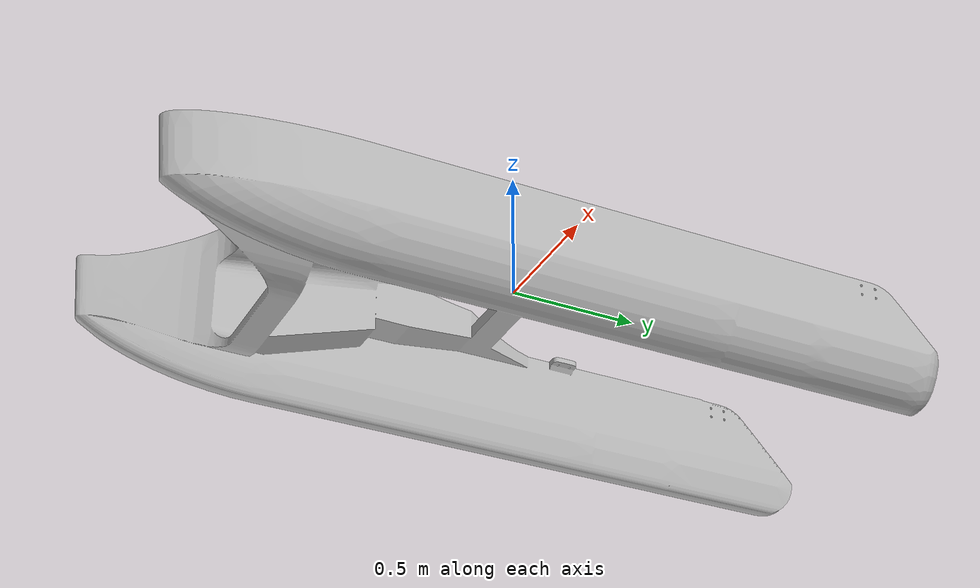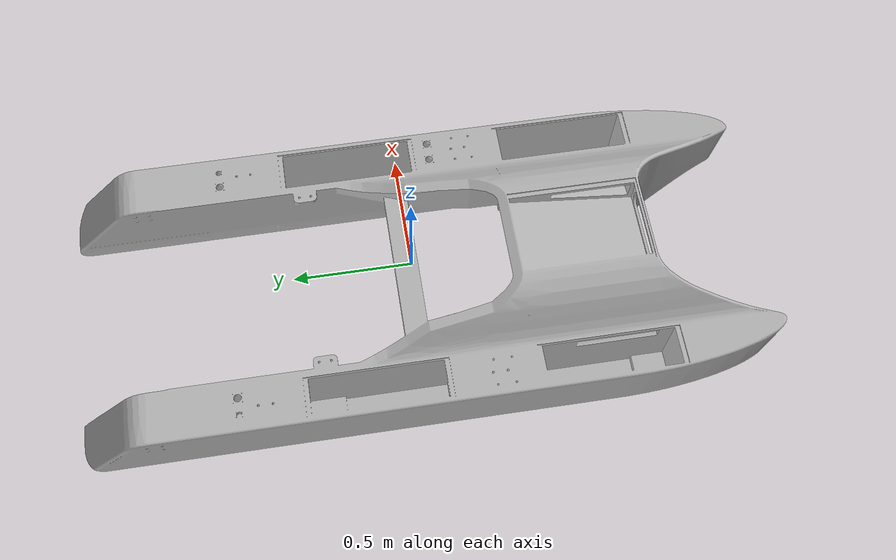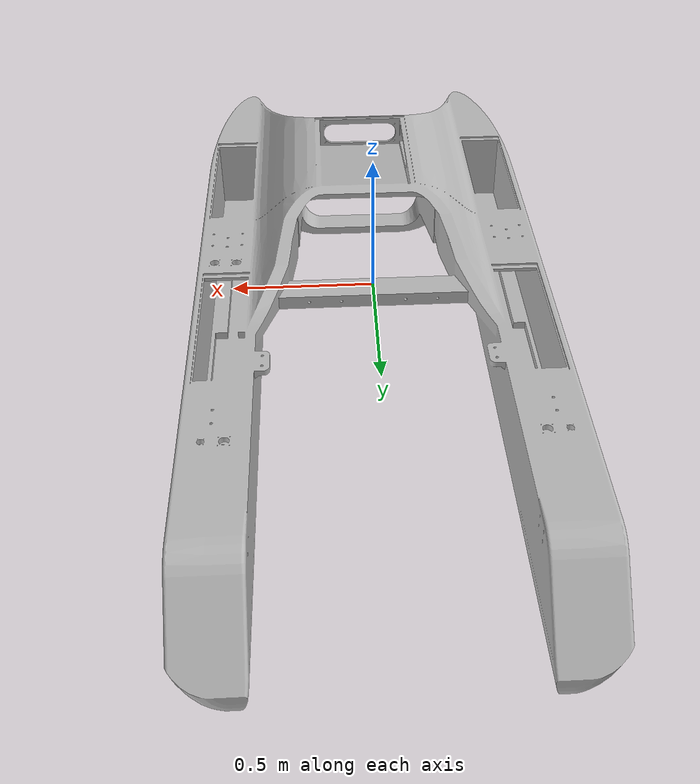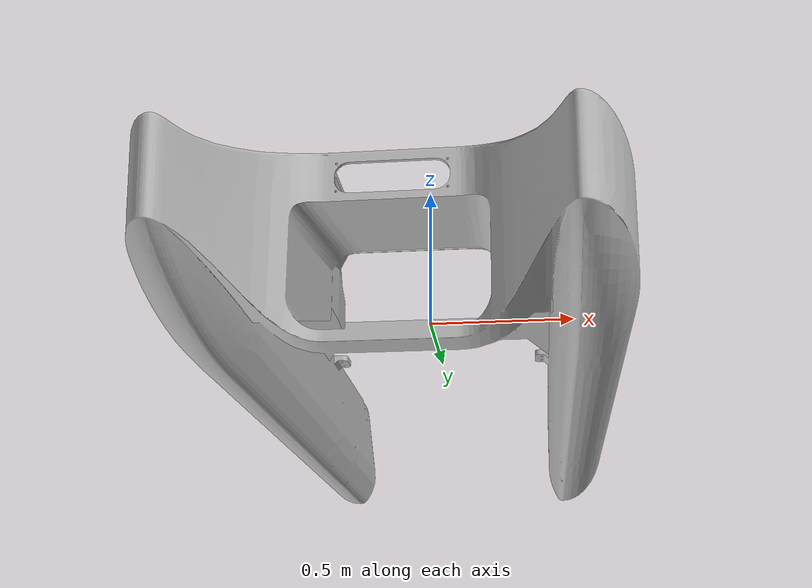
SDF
<?xml version="1.0"?>
<sdf version="1.11">
  <model name="clearbot_boat">

    <link name="base_link">
      <inertial>
        <pose>0.001198 -0.153827 -0.146414 0 0 0</pose>
        <mass>220</mass>
        <inertia>
          <ixx>158.8</ixx>
          <ixy>0.004486</ixy>
          <ixz>0.009781</ixz>
          <iyy>50.46</iyy>
          <iyz>5.49</iyz>
          <izz>201.6</izz>
        </inertia>
      </inertial>
      <visual name="hull_visual">
        <pose>-0.643048 1.429743 2.663586 0 0 0</pose>
        <geometry>
          <mesh>
            <uri>model://clearbot_boat/meshes/hull.obj</uri>
            <scale>0.01 0.01 0.01</scale>
          </mesh>
        </geometry>
      </visual>
      <collision name="hull_collision">
        <geometry>
          <box>
            <size>1.300 3.010 0.580</size>
          </box>
        </geometry>
      </collision>

      <sensor name="imu_sensor" type="imu">
        <pose>0 0 0 0 0 -1.570796</pose>
        <always_on>1</always_on>
        <update_rate>250</update_rate>
        <imu>
          <angular_velocity>
            <x>
              <noise type="gaussian">
                <mean>0</mean>
                <stddev>0.0003394</stddev>
                <dynamic_bias_stddev>3.8785e-05</dynamic_bias_stddev>
                <dynamic_bias_correlation_time>1000</dynamic_bias_correlation_time>
              </noise>
            </x>
            <y>
              <noise type="gaussian">
                <mean>0</mean>
                <stddev>0.0003394</stddev>
                <dynamic_bias_stddev>3.8785e-05</dynamic_bias_stddev>
                <dynamic_bias_correlation_time>1000</dynamic_bias_correlation_time>
              </noise>
            </y>
            <z>
              <noise type="gaussian">
                <mean>0</mean>
                <stddev>0.0003394</stddev>
                <dynamic_bias_stddev>3.8785e-05</dynamic_bias_stddev>
                <dynamic_bias_correlation_time>1000</dynamic_bias_correlation_time>
              </noise>
            </z>
          </angular_velocity>
          <linear_acceleration>
            <x>
              <noise type="gaussian">
                <mean>0</mean>
                <stddev>0.004</stddev>
                <dynamic_bias_stddev>0.006</dynamic_bias_stddev>
                <dynamic_bias_correlation_time>300</dynamic_bias_correlation_time>
              </noise>
            </x>
            <y>
              <noise type="gaussian">
                <mean>0</mean>
                <stddev>0.004</stddev>
                <dynamic_bias_stddev>0.006</dynamic_bias_stddev>
                <dynamic_bias_correlation_time>300</dynamic_bias_correlation_time>
              </noise>
            </y>
            <z>
              <noise type="gaussian">
                <mean>0</mean>
                <stddev>0.004</stddev>
                <dynamic_bias_stddev>0.006</dynamic_bias_stddev>
                <dynamic_bias_correlation_time>300</dynamic_bias_correlation_time>
              </noise>
            </z>
          </linear_acceleration>
        </imu>
      </sensor>
      <sensor name="air_pressure_sensor" type="air_pressure">
        <always_on>1</always_on>
        <update_rate>50</update_rate>
        <air_pressure>
          <pressure>
            <noise type="gaussian">
              <mean>0</mean>
              <stddev>0.01</stddev>
            </noise>
          </pressure>
        </air_pressure>
      </sensor>
      <sensor name="magnetometer_sensor" type="magnetometer">
        <pose>0 0 0 0 0 -1.570796</pose>
        <always_on>1</always_on>
        <update_rate>100</update_rate>
        <magnetometer>
          <x>
            <noise type="gaussian">
              <stddev>0.0001</stddev>
            </noise>
          </x>
          <y>
            <noise type="gaussian">
              <stddev>0.0001</stddev>
            </noise>
          </y>
          <z>
            <noise type="gaussian">
              <stddev>0.0001</stddev>
            </noise>
          </z>
        </magnetometer>
      </sensor>
      <sensor name="navsat_sensor" type="navsat">
        <always_on>1</always_on>
        <update_rate>30</update_rate>
      </sensor>
      <sensor name="camera_sensor" type="camera">
        <pose>0 -1.4 0.35 0 0 -1.570796</pose>
        <camera>
          <horizontal_fov>1.396</horizontal_fov>
          <image>
            <width>1280</width>
            <height>720</height>
          </image>
          <clip>
            <near>0.1</near>
            <far>100</far>
          </clip>
        </camera>
        <always_on>1</always_on>
        <update_rate>30</update_rate>
        <visualize>true</visualize>
      </sensor>
    </link>

    <link name="thruster_left_link">
      <pose relative_to="base_link">0.543743 1.459807 -0.328330 0 0 0</pose>
      <inertial>
        <mass>10</mass>
        <inertia>
          <ixx>0.3946</ixx>
          <ixy>0.0</ixy>
          <ixz>0.0</ixz>
          <iyy>0.3267</iyy>
          <iyz>-0.03239</iyz>
          <izz>0.08719</izz>
        </inertia>
      </inertial>
      <collision name="thruster_left_collision">
        <geometry>
          <cylinder>
            <radius>0.1215</radius>
            <length>0.70775</length>
          </cylinder>
        </geometry>
      </collision>
    </link>

    <link name="thruster_right_link">
      <pose relative_to="base_link">-0.506257 1.459807 -0.328330 0 0 0</pose>
      <inertial>
        <mass>10</mass>
        <inertia>
          <ixx>0.3946</ixx>
          <ixy>0.0</ixy>
          <ixz>0.0</ixz>
          <iyy>0.3267</iyy>
          <iyz>-0.03239</iyz>
          <izz>0.08719</izz>
        </inertia>
      </inertial>
      <collision name="thruster_right_collision">
        <geometry>
          <cylinder>
            <radius>0.1215</radius>
            <length>0.70775</length>
          </cylinder>
        </geometry>
      </collision>
    </link>

    <joint name="left_thruster_joint" type="revolute">
      <parent>base_link</parent>
      <child>thruster_left_link</child>
      <axis>
        <xyz>0 -1 0</xyz>
        <limit>
          <lower>-1e16</lower>
          <upper>1e16</upper>
        </limit>
      </axis>
    </joint>

    <joint name="right_thruster_joint" type="revolute">
      <parent>base_link</parent>
      <child>thruster_right_link</child>
      <axis>
        <xyz>0 -1 0</xyz>
        <limit>
          <lower>-1e16</lower>
          <upper>1e16</upper>
        </limit>
      </axis>
    </joint>

    <plugin name="vrx::Surface" filename="libSurface.so">
      <link_name>base_link</link_name>
      <hull_length>3.010</hull_length>
      <hull_radius>0.65</hull_radius>
      <fluid_level>0.3</fluid_level>
      <points>
        <point>0.65 1.505 0</point>
        <point>0.65 -1.505 0</point>
        <point>-0.65 1.505 0</point>
        <point>-0.65 -1.505 0</point>
      </points>
      <wavefield>
        <wave>
          <model>CWR</model>
          <amplitude>0.0</amplitude>
        </wave>
      </wavefield>
    </plugin>

    <plugin name="vrx::SimpleHydrodynamics" filename="libSimpleHydrodynamics.so">
      <link_name>base_link</link_name>
      <xDotU>0.0</xDotU>
      <yDotV>0.0</yDotV>
      <nDotR>0.0</nDotR>
      <xU>100.0</xU>
      <xUU>150.0</xUU>
      <yV>100.0</yV>
      <yVV>100.0</yVV>
      <zW>500.0</zW>
      <kP>300.0</kP>
      <kPP>600.0</kPP>
      <mQ>900.0</mQ>
      <mQQ>900.0</mQQ>
      <nR>800.0</nR>
      <nRR>800.0</nRR>
    </plugin>

    <plugin name="gz::sim::systems::Thruster" filename="gz-sim-thruster-system">
      <joint_name>left_thruster_joint</joint_name>
      <thrust_coefficient>0.004422</thrust_coefficient>
      <fluid_density>1000</fluid_density>
      <propeller_diameter>0.2</propeller_diameter>
      <velocity_control>true</velocity_control>
      <max_thrust_cmd>2353.53383667818</max_thrust_cmd>
      <namespace>clearbot</namespace>
      <topic>thrusters/left/thrust</topic>
      <name>left</name>
    </plugin>

    <plugin name="gz::sim::systems::Thruster" filename="gz-sim-thruster-system">
      <joint_name>right_thruster_joint</joint_name>
      <thrust_coefficient>0.004422</thrust_coefficient>
      <fluid_density>1000</fluid_density>
      <propeller_diameter>0.2</propeller_diameter>
      <velocity_control>true</velocity_control>
      <max_thrust_cmd>2353.53383667818</max_thrust_cmd>
      <namespace>clearbot</namespace>
      <topic>thrusters/right/thrust</topic>
      <name>right</name>
    </plugin>

    <plugin name="custom::ActuatorsToThrust" filename="libActuatorsToThrust.so">
      <wheel_right_actuator_number>0</wheel_right_actuator_number>
      <wheel_left_actuator_number>1</wheel_left_actuator_number>
      <esc_right_actuator_number>1</esc_right_actuator_number>
      <esc_left_actuator_number>0</esc_left_actuator_number>
    </plugin>
  </model>
</sdf>
